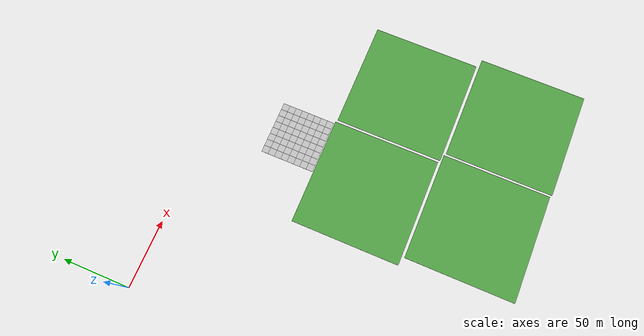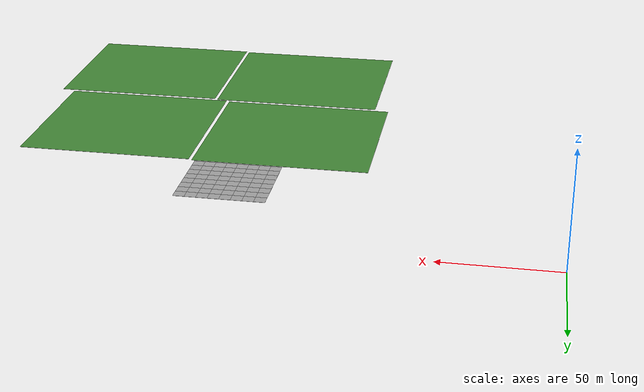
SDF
<sdf version="1.7">
 <world name="default">
  <model name="mud_plane_80x80_5">
   <model name="mud_plane_40x40_0">
    <model name="mud_plane_20x20">
     <model name="mud_plane">
      <static>1</static>
      <link name="link">
       <collision name="collision"><geometry><box><size>10 10 0.1</size></box></geometry></collision>
       <visual name="visual_1">
        <pose>-2.5 2.5 -0.05 0 -0 0</pose>
        <cast_shadows>0</cast_shadows>
        <geometry><box><size>5 5 0.1</size></box></geometry>
        <material>
         <script>
          <uri>model://mud_plane/materials/scripts</uri>
          <uri>model://mud_plane/materials/textures</uri>
          <name>vrc/mud</name>
         </script>
        </material>
       </visual>
       <visual name="visual_2">
        <pose>2.5 2.5 -0.05 0 -0 0</pose>
        <cast_shadows>0</cast_shadows>
        <geometry><box><size>5 5 0.1</size></box></geometry>
        <material>
         <script>
          <uri>model://mud_plane/materials/scripts</uri>
          <uri>model://mud_plane/materials/textures</uri>
          <name>vrc/mud</name>
         </script>
        </material>
       </visual>
       <visual name="visual_3">
        <pose>2.5 -2.5 -0.05 0 -0 0</pose>
        <cast_shadows>0</cast_shadows>
        <geometry><box><size>5 5 0.1</size></box></geometry>
        <material>
         <script>
          <uri>model://mud_plane/materials/scripts</uri>
          <uri>model://mud_plane/materials/textures</uri>
          <name>vrc/mud</name>
         </script>
        </material>
       </visual>
       <visual name="visual_4">
        <pose>-2.5 -2.5 -0.05 0 -0 0</pose>
        <cast_shadows>0</cast_shadows>
        <geometry><box><size>5 5 0.1</size></box></geometry>
        <material>
         <script>
          <uri>model://mud_plane/materials/scripts</uri>
          <uri>model://mud_plane/materials/textures</uri>
          <name>vrc/mud</name>
         </script>
        </material>
       </visual>
      </link>
      <pose>-4.99986 -4.99991 0 0 -0 0</pose>
     </model>
     <model name="mud_plane_0">
      <static>1</static>
      <link name="link">
       <collision name="collision"><geometry><box><size>10 10 0.1</size></box></geometry></collision>
       <visual name="visual_1">
        <pose>-2.5 2.5 -0.05 0 -0 0</pose>
        <cast_shadows>0</cast_shadows>
        <geometry><box><size>5 5 0.1</size></box></geometry>
        <material>
         <script>
          <uri>model://mud_plane/materials/scripts</uri>
          <uri>model://mud_plane/materials/textures</uri>
          <name>vrc/mud</name>
         </script>
        </material>
       </visual>
       <visual name="visual_2">
        <pose>2.5 2.5 -0.05 0 -0 0</pose>
        <cast_shadows>0</cast_shadows>
        <geometry><box><size>5 5 0.1</size></box></geometry>
        <material>
         <script>
          <uri>model://mud_plane/materials/scripts</uri>
          <uri>model://mud_plane/materials/textures</uri>
          <name>vrc/mud</name>
         </script>
        </material>
       </visual>
       <visual name="visual_3">
        <pose>2.5 -2.5 -0.05 0 -0 0</pose>
        <cast_shadows>0</cast_shadows>
        <geometry><box><size>5 5 0.1</size></box></geometry>
        <material>
         <script>
          <uri>model://mud_plane/materials/scripts</uri>
          <uri>model://mud_plane/materials/textures</uri>
          <name>vrc/mud</name>
         </script>
        </material>
       </visual>
       <visual name="visual_4">
        <pose>-2.5 -2.5 -0.05 0 -0 0</pose>
        <cast_shadows>0</cast_shadows>
        <geometry><box><size>5 5 0.1</size></box></geometry>
        <material>
         <script>
          <uri>model://mud_plane/materials/scripts</uri>
          <uri>model://mud_plane/materials/textures</uri>
          <name>vrc/mud</name>
         </script>
        </material>
       </visual>
      </link>
      <pose>-4.99946 4.99954 0 0 -0 0</pose>
     </model>
     <model name="mud_plane_1">
      <static>1</static>
      <link name="link">
       <collision name="collision"><geometry><box><size>10 10 0.1</size></box></geometry></collision>
       <visual name="visual_1">
        <pose>-2.5 2.5 -0.05 0 -0 0</pose>
        <cast_shadows>0</cast_shadows>
        <geometry><box><size>5 5 0.1</size></box></geometry>
        <material>
         <script>
          <uri>model://mud_plane/materials/scripts</uri>
          <uri>model://mud_plane/materials/textures</uri>
          <name>vrc/mud</name>
         </script>
        </material>
       </visual>
       <visual name="visual_2">
        <pose>2.5 2.5 -0.05 0 -0 0</pose>
        <cast_shadows>0</cast_shadows>
        <geometry><box><size>5 5 0.1</size></box></geometry>
        <material>
         <script>
          <uri>model://mud_plane/materials/scripts</uri>
          <uri>model://mud_plane/materials/textures</uri>
          <name>vrc/mud</name>
         </script>
        </material>
       </visual>
       <visual name="visual_3">
        <pose>2.5 -2.5 -0.05 0 -0 0</pose>
        <cast_shadows>0</cast_shadows>
        <geometry><box><size>5 5 0.1</size></box></geometry>
        <material>
         <script>
          <uri>model://mud_plane/materials/scripts</uri>
          <uri>model://mud_plane/materials/textures</uri>
          <name>vrc/mud</name>
         </script>
        </material>
       </visual>
       <visual name="visual_4">
        <pose>-2.5 -2.5 -0.05 0 -0 0</pose>
        <cast_shadows>0</cast_shadows>
        <geometry><box><size>5 5 0.1</size></box></geometry>
        <material>
         <script>
          <uri>model://mud_plane/materials/scripts</uri>
          <uri>model://mud_plane/materials/textures</uri>
          <name>vrc/mud</name>
         </script>
        </material>
       </visual>
      </link>
      <pose>4.99964 -4.99949 0 0 -0 0</pose>
     </model>
     <model name="mud_plane_2">
      <static>1</static>
      <link name="link">
       <collision name="collision"><geometry><box><size>10 10 0.1</size></box></geometry></collision>
       <visual name="visual_1">
        <pose>-2.5 2.5 -0.05 0 -0 0</pose>
        <cast_shadows>0</cast_shadows>
        <geometry><box><size>5 5 0.1</size></box></geometry>
        <material>
         <script>
          <uri>model://mud_plane/materials/scripts</uri>
          <uri>model://mud_plane/materials/textures</uri>
          <name>vrc/mud</name>
         </script>
        </material>
       </visual>
       <visual name="visual_2">
        <pose>2.5 2.5 -0.05 0 -0 0</pose>
        <cast_shadows>0</cast_shadows>
        <geometry><box><size>5 5 0.1</size></box></geometry>
        <material>
         <script>
          <uri>model://mud_plane/materials/scripts</uri>
          <uri>model://mud_plane/materials/textures</uri>
          <name>vrc/mud</name>
         </script>
        </material>
       </visual>
       <visual name="visual_3">
        <pose>2.5 -2.5 -0.05 0 -0 0</pose>
        <cast_shadows>0</cast_shadows>
        <geometry><box><size>5 5 0.1</size></box></geometry>
        <material>
         <script>
          <uri>model://mud_plane/materials/scripts</uri>
          <uri>model://mud_plane/materials/textures</uri>
          <name>vrc/mud</name>
         </script>
        </material>
       </visual>
       <visual name="visual_4">
        <pose>-2.5 -2.5 -0.05 0 -0 0</pose>
        <cast_shadows>0</cast_shadows>
        <geometry><box><size>5 5 0.1</size></box></geometry>
        <material>
         <script>
          <uri>model://mud_plane/materials/scripts</uri>
          <uri>model://mud_plane/materials/textures</uri>
          <name>vrc/mud</name>
         </script>
        </material>
       </visual>
      </link>
      <pose>4.99967 4.99986 0 0 -0 0</pose>
     </model>
     <static>0</static>
     <pose>-9.99895 9.99843 0 0 -0 0</pose>
    </model>
    <model name="mud_plane_20x20_0">
     <model name="mud_plane">
      <static>1</static>
      <link name="link">
       <collision name="collision"><geometry><box><size>10 10 0.1</size></box></geometry></collision>
       <visual name="visual_1">
        <pose>-2.5 2.5 -0.05 0 -0 0</pose>
        <cast_shadows>0</cast_shadows>
        <geometry><box><size>5 5 0.1</size></box></geometry>
        <material>
         <script>
          <uri>model://mud_plane/materials/scripts</uri>
          <uri>model://mud_plane/materials/textures</uri>
          <name>vrc/mud</name>
         </script>
        </material>
       </visual>
       <visual name="visual_2">
        <pose>2.5 2.5 -0.05 0 -0 0</pose>
        <cast_shadows>0</cast_shadows>
        <geometry><box><size>5 5 0.1</size></box></geometry>
        <material>
         <script>
          <uri>model://mud_plane/materials/scripts</uri>
          <uri>model://mud_plane/materials/textures</uri>
          <name>vrc/mud</name>
         </script>
        </material>
       </visual>
       <visual name="visual_3">
        <pose>2.5 -2.5 -0.05 0 -0 0</pose>
        <cast_shadows>0</cast_shadows>
        <geometry><box><size>5 5 0.1</size></box></geometry>
        <material>
         <script>
          <uri>model://mud_plane/materials/scripts</uri>
          <uri>model://mud_plane/materials/textures</uri>
          <name>vrc/mud</name>
         </script>
        </material>
       </visual>
       <visual name="visual_4">
        <pose>-2.5 -2.5 -0.05 0 -0 0</pose>
        <cast_shadows>0</cast_shadows>
        <geometry><box><size>5 5 0.1</size></box></geometry>
        <material>
         <script>
          <uri>model://mud_plane/materials/scripts</uri>
          <uri>model://mud_plane/materials/textures</uri>
          <name>vrc/mud</name>
         </script>
        </material>
       </visual>
      </link>
      <pose>-4.99986 -4.99991 0 0 -0 0</pose>
     </model>
     <model name="mud_plane_0">
      <static>1</static>
      <link name="link">
       <collision name="collision"><geometry><box><size>10 10 0.1</size></box></geometry></collision>
       <visual name="visual_1">
        <pose>-2.5 2.5 -0.05 0 -0 0</pose>
        <cast_shadows>0</cast_shadows>
        <geometry><box><size>5 5 0.1</size></box></geometry>
        <material>
         <script>
          <uri>model://mud_plane/materials/scripts</uri>
          <uri>model://mud_plane/materials/textures</uri>
          <name>vrc/mud</name>
         </script>
        </material>
       </visual>
       <visual name="visual_2">
        <pose>2.5 2.5 -0.05 0 -0 0</pose>
        <cast_shadows>0</cast_shadows>
        <geometry><box><size>5 5 0.1</size></box></geometry>
        <material>
         <script>
          <uri>model://mud_plane/materials/scripts</uri>
          <uri>model://mud_plane/materials/textures</uri>
          <name>vrc/mud</name>
         </script>
        </material>
       </visual>
       <visual name="visual_3">
        <pose>2.5 -2.5 -0.05 0 -0 0</pose>
        <cast_shadows>0</cast_shadows>
        <geometry><box><size>5 5 0.1</size></box></geometry>
        <material>
         <script>
          <uri>model://mud_plane/materials/scripts</uri>
          <uri>model://mud_plane/materials/textures</uri>
          <name>vrc/mud</name>
         </script>
        </material>
       </visual>
       <visual name="visual_4">
        <pose>-2.5 -2.5 -0.05 0 -0 0</pose>
        <cast_shadows>0</cast_shadows>
        <geometry><box><size>5 5 0.1</size></box></geometry>
        <material>
         <script>
          <uri>model://mud_plane/materials/scripts</uri>
          <uri>model://mud_plane/materials/textures</uri>
          <name>vrc/mud</name>
         </script>
        </material>
       </visual>
      </link>
      <pose>-4.99946 4.99954 0 0 -0 0</pose>
     </model>
     <model name="mud_plane_1">
      <static>1</static>
      <link name="link">
       <collision name="collision"><geometry><box><size>10 10 0.1</size></box></geometry></collision>
       <visual name="visual_1">
        <pose>-2.5 2.5 -0.05 0 -0 0</pose>
        <cast_shadows>0</cast_shadows>
        <geometry><box><size>5 5 0.1</size></box></geometry>
        <material>
         <script>
          <uri>model://mud_plane/materials/scripts</uri>
          <uri>model://mud_plane/materials/textures</uri>
          <name>vrc/mud</name>
         </script>
        </material>
       </visual>
       <visual name="visual_2">
        <pose>2.5 2.5 -0.05 0 -0 0</pose>
        <cast_shadows>0</cast_shadows>
        <geometry><box><size>5 5 0.1</size></box></geometry>
        <material>
         <script>
          <uri>model://mud_plane/materials/scripts</uri>
          <uri>model://mud_plane/materials/textures</uri>
          <name>vrc/mud</name>
         </script>
        </material>
       </visual>
       <visual name="visual_3">
        <pose>2.5 -2.5 -0.05 0 -0 0</pose>
        <cast_shadows>0</cast_shadows>
        <geometry><box><size>5 5 0.1</size></box></geometry>
        <material>
         <script>
          <uri>model://mud_plane/materials/scripts</uri>
          <uri>model://mud_plane/materials/textures</uri>
          <name>vrc/mud</name>
         </script>
        </material>
       </visual>
       <visual name="visual_4">
        <pose>-2.5 -2.5 -0.05 0 -0 0</pose>
        <cast_shadows>0</cast_shadows>
        <geometry><box><size>5 5 0.1</size></box></geometry>
        <material>
         <script>
          <uri>model://mud_plane/materials/scripts</uri>
          <uri>model://mud_plane/materials/textures</uri>
          <name>vrc/mud</name>
         </script>
        </material>
       </visual>
      </link>
      <pose>4.99964 -4.99949 0 0 -0 0</pose>
     </model>
     <model name="mud_plane_2">
      <static>1</static>
      <link name="link">
       <collision name="collision"><geometry><box><size>10 10 0.1</size></box></geometry></collision>
       <visual name="visual_1">
        <pose>-2.5 2.5 -0.05 0 -0 0</pose>
        <cast_shadows>0</cast_shadows>
        <geometry><box><size>5 5 0.1</size></box></geometry>
        <material>
         <script>
          <uri>model://mud_plane/materials/scripts</uri>
          <uri>model://mud_plane/materials/textures</uri>
          <name>vrc/mud</name>
         </script>
        </material>
       </visual>
       <visual name="visual_2">
        <pose>2.5 2.5 -0.05 0 -0 0</pose>
        <cast_shadows>0</cast_shadows>
        <geometry><box><size>5 5 0.1</size></box></geometry>
        <material>
         <script>
          <uri>model://mud_plane/materials/scripts</uri>
          <uri>model://mud_plane/materials/textures</uri>
          <name>vrc/mud</name>
         </script>
        </material>
       </visual>
       <visual name="visual_3">
        <pose>2.5 -2.5 -0.05 0 -0 0</pose>
        <cast_shadows>0</cast_shadows>
        <geometry><box><size>5 5 0.1</size></box></geometry>
        <material>
         <script>
          <uri>model://mud_plane/materials/scripts</uri>
          <uri>model://mud_plane/materials/textures</uri>
          <name>vrc/mud</name>
         </script>
        </material>
       </visual>
       <visual name="visual_4">
        <pose>-2.5 -2.5 -0.05 0 -0 0</pose>
        <cast_shadows>0</cast_shadows>
        <geometry><box><size>5 5 0.1</size></box></geometry>
        <material>
         <script>
          <uri>model://mud_plane/materials/scripts</uri>
          <uri>model://mud_plane/materials/textures</uri>
          <name>vrc/mud</name>
         </script>
        </material>
       </visual>
      </link>
      <pose>4.99967 4.99986 0 0 -0 0</pose>
     </model>
     <static>0</static>
     <pose>9.99933 9.9997 0 0 -0 0</pose>
    </model>
    <model name="mud_plane_20x20_1">
     <model name="mud_plane">
      <static>1</static>
      <link name="link">
       <collision name="collision"><geometry><box><size>10 10 0.1</size></box></geometry></collision>
       <visual name="visual_1">
        <pose>-2.5 2.5 -0.05 0 -0 0</pose>
        <cast_shadows>0</cast_shadows>
        <geometry><box><size>5 5 0.1</size></box></geometry>
        <material>
         <script>
          <uri>model://mud_plane/materials/scripts</uri>
          <uri>model://mud_plane/materials/textures</uri>
          <name>vrc/mud</name>
         </script>
        </material>
       </visual>
       <visual name="visual_2">
        <pose>2.5 2.5 -0.05 0 -0 0</pose>
        <cast_shadows>0</cast_shadows>
        <geometry><box><size>5 5 0.1</size></box></geometry>
        <material>
         <script>
          <uri>model://mud_plane/materials/scripts</uri>
          <uri>model://mud_plane/materials/textures</uri>
          <name>vrc/mud</name>
         </script>
        </material>
       </visual>
       <visual name="visual_3">
        <pose>2.5 -2.5 -0.05 0 -0 0</pose>
        <cast_shadows>0</cast_shadows>
        <geometry><box><size>5 5 0.1</size></box></geometry>
        <material>
         <script>
          <uri>model://mud_plane/materials/scripts</uri>
          <uri>model://mud_plane/materials/textures</uri>
          <name>vrc/mud</name>
         </script>
        </material>
       </visual>
       <visual name="visual_4">
        <pose>-2.5 -2.5 -0.05 0 -0 0</pose>
        <cast_shadows>0</cast_shadows>
        <geometry><box><size>5 5 0.1</size></box></geometry>
        <material>
         <script>
          <uri>model://mud_plane/materials/scripts</uri>
          <uri>model://mud_plane/materials/textures</uri>
          <name>vrc/mud</name>
         </script>
        </material>
       </visual>
      </link>
      <pose>-4.99986 -4.99991 0 0 -0 0</pose>
     </model>
     <model name="mud_plane_0">
      <static>1</static>
      <link name="link">
       <collision name="collision"><geometry><box><size>10 10 0.1</size></box></geometry></collision>
       <visual name="visual_1">
        <pose>-2.5 2.5 -0.05 0 -0 0</pose>
        <cast_shadows>0</cast_shadows>
        <geometry><box><size>5 5 0.1</size></box></geometry>
        <material>
         <script>
          <uri>model://mud_plane/materials/scripts</uri>
          <uri>model://mud_plane/materials/textures</uri>
          <name>vrc/mud</name>
         </script>
        </material>
       </visual>
       <visual name="visual_2">
        <pose>2.5 2.5 -0.05 0 -0 0</pose>
        <cast_shadows>0</cast_shadows>
        <geometry><box><size>5 5 0.1</size></box></geometry>
        <material>
         <script>
          <uri>model://mud_plane/materials/scripts</uri>
          <uri>model://mud_plane/materials/textures</uri>
          <name>vrc/mud</name>
         </script>
        </material>
       </visual>
       <visual name="visual_3">
        <pose>2.5 -2.5 -0.05 0 -0 0</pose>
        <cast_shadows>0</cast_shadows>
        <geometry><box><size>5 5 0.1</size></box></geometry>
        <material>
         <script>
          <uri>model://mud_plane/materials/scripts</uri>
          <uri>model://mud_plane/materials/textures</uri>
          <name>vrc/mud</name>
         </script>
        </material>
       </visual>
       <visual name="visual_4">
        <pose>-2.5 -2.5 -0.05 0 -0 0</pose>
        <cast_shadows>0</cast_shadows>
        <geometry><box><size>5 5 0.1</size></box></geometry>
        <material>
         <script>
          <uri>model://mud_plane/materials/scripts</uri>
          <uri>model://mud_plane/materials/textures</uri>
          <name>vrc/mud</name>
         </script>
        </material>
       </visual>
      </link>
      <pose>-4.99946 4.99954 0 0 -0 0</pose>
     </model>
     <model name="mud_plane_1">
      <static>1</static>
      <link name="link">
       <collision name="collision"><geometry><box><size>10 10 0.1</size></box></geometry></collision>
       <visual name="visual_1">
        <pose>-2.5 2.5 -0.05 0 -0 0</pose>
        <cast_shadows>0</cast_shadows>
        <geometry><box><size>5 5 0.1</size></box></geometry>
        <material>
         <script>
          <uri>model://mud_plane/materials/scripts</uri>
          <uri>model://mud_plane/materials/textures</uri>
          <name>vrc/mud</name>
         </script>
        </material>
       </visual>
       <visual name="visual_2">
        <pose>2.5 2.5 -0.05 0 -0 0</pose>
        <cast_shadows>0</cast_shadows>
        <geometry><box><size>5 5 0.1</size></box></geometry>
        <material>
         <script>
          <uri>model://mud_plane/materials/scripts</uri>
          <uri>model://mud_plane/materials/textures</uri>
          <name>vrc/mud</name>
         </script>
        </material>
       </visual>
       <visual name="visual_3">
        <pose>2.5 -2.5 -0.05 0 -0 0</pose>
        <cast_shadows>0</cast_shadows>
        <geometry><box><size>5 5 0.1</size></box></geometry>
        <material>
         <script>
          <uri>model://mud_plane/materials/scripts</uri>
          <uri>model://mud_plane/materials/textures</uri>
          <name>vrc/mud</name>
         </script>
        </material>
       </visual>
       <visual name="visual_4">
        <pose>-2.5 -2.5 -0.05 0 -0 0</pose>
        <cast_shadows>0</cast_shadows>
        <geometry><box><size>5 5 0.1</size></box></geometry>
        <material>
         <script>
          <uri>model://mud_plane/materials/scripts</uri>
          <uri>model://mud_plane/materials/textures</uri>
          <name>vrc/mud</name>
         </script>
        </material>
       </visual>
      </link>
      <pose>4.99964 -4.99949 0 0 -0 0</pose>
     </model>
     <model name="mud_plane_2">
      <static>1</static>
      <link name="link">
       <collision name="collision"><geometry><box><size>10 10 0.1</size></box></geometry></collision>
       <visual name="visual_1">
        <pose>-2.5 2.5 -0.05 0 -0 0</pose>
        <cast_shadows>0</cast_shadows>
        <geometry><box><size>5 5 0.1</size></box></geometry>
        <material>
         <script>
          <uri>model://mud_plane/materials/scripts</uri>
          <uri>model://mud_plane/materials/textures</uri>
          <name>vrc/mud</name>
         </script>
        </material>
       </visual>
       <visual name="visual_2">
        <pose>2.5 2.5 -0.05 0 -0 0</pose>
        <cast_shadows>0</cast_shadows>
        <geometry><box><size>5 5 0.1</size></box></geometry>
        <material>
         <script>
          <uri>model://mud_plane/materials/scripts</uri>
          <uri>model://mud_plane/materials/textures</uri>
          <name>vrc/mud</name>
         </script>
        </material>
       </visual>
       <visual name="visual_3">
        <pose>2.5 -2.5 -0.05 0 -0 0</pose>
        <cast_shadows>0</cast_shadows>
        <geometry><box><size>5 5 0.1</size></box></geometry>
        <material>
         <script>
          <uri>model://mud_plane/materials/scripts</uri>
          <uri>model://mud_plane/materials/textures</uri>
          <name>vrc/mud</name>
         </script>
        </material>
       </visual>
       <visual name="visual_4">
        <pose>-2.5 -2.5 -0.05 0 -0 0</pose>
        <cast_shadows>0</cast_shadows>
        <geometry><box><size>5 5 0.1</size></box></geometry>
        <material>
         <script>
          <uri>model://mud_plane/materials/scripts</uri>
          <uri>model://mud_plane/materials/textures</uri>
          <name>vrc/mud</name>
         </script>
        </material>
       </visual>
      </link>
      <pose>4.99967 4.99986 0 0 -0 0</pose>
     </model>
     <static>0</static>
     <pose>9.9993 -9.99877 0 0 -0 0</pose>
    </model>
    <model name="mud_plane_20x20_2">
     <model name="mud_plane">
      <static>1</static>
      <link name="link">
       <collision name="collision"><geometry><box><size>10 10 0.1</size></box></geometry></collision>
       <visual name="visual_1">
        <pose>-2.5 2.5 -0.05 0 -0 0</pose>
        <cast_shadows>0</cast_shadows>
        <geometry><box><size>5 5 0.1</size></box></geometry>
        <material>
         <script>
          <uri>model://mud_plane/materials/scripts</uri>
          <uri>model://mud_plane/materials/textures</uri>
          <name>vrc/mud</name>
         </script>
        </material>
       </visual>
       <visual name="visual_2">
        <pose>2.5 2.5 -0.05 0 -0 0</pose>
        <cast_shadows>0</cast_shadows>
        <geometry><box><size>5 5 0.1</size></box></geometry>
        <material>
         <script>
          <uri>model://mud_plane/materials/scripts</uri>
          <uri>model://mud_plane/materials/textures</uri>
          <name>vrc/mud</name>
         </script>
        </material>
       </visual>
       <visual name="visual_3">
        <pose>2.5 -2.5 -0.05 0 -0 0</pose>
        <cast_shadows>0</cast_shadows>
        <geometry><box><size>5 5 0.1</size></box></geometry>
        <material>
         <script>
          <uri>model://mud_plane/materials/scripts</uri>
          <uri>model://mud_plane/materials/textures</uri>
          <name>vrc/mud</name>
         </script>
        </material>
       </visual>
       <visual name="visual_4">
        <pose>-2.5 -2.5 -0.05 0 -0 0</pose>
        <cast_shadows>0</cast_shadows>
        <geometry><box><size>5 5 0.1</size></box></geometry>
        <material>
         <script>
          <uri>model://mud_plane/materials/scripts</uri>
          <uri>model://mud_plane/materials/textures</uri>
          <name>vrc/mud</name>
         </script>
        </material>
       </visual>
      </link>
      <pose>-4.99986 -4.99991 0 0 -0 0</pose>
     </model>
     <model name="mud_plane_0">
      <static>1</static>
      <link name="link">
       <collision name="collision"><geometry><box><size>10 10 0.1</size></box></geometry></collision>
       <visual name="visual_1">
        <pose>-2.5 2.5 -0.05 0 -0 0</pose>
        <cast_shadows>0</cast_shadows>
        <geometry><box><size>5 5 0.1</size></box></geometry>
        <material>
         <script>
          <uri>model://mud_plane/materials/scripts</uri>
          <uri>model://mud_plane/materials/textures</uri>
          <name>vrc/mud</name>
         </script>
        </material>
       </visual>
       <visual name="visual_2">
        <pose>2.5 2.5 -0.05 0 -0 0</pose>
        <cast_shadows>0</cast_shadows>
        <geometry><box><size>5 5 0.1</size></box></geometry>
        <material>
         <script>
          <uri>model://mud_plane/materials/scripts</uri>
          <uri>model://mud_plane/materials/textures</uri>
          <name>vrc/mud</name>
         </script>
        </material>
       </visual>
       <visual name="visual_3">
        <pose>2.5 -2.5 -0.05 0 -0 0</pose>
        <cast_shadows>0</cast_shadows>
        <geometry><box><size>5 5 0.1</size></box></geometry>
        <material>
         <script>
          <uri>model://mud_plane/materials/scripts</uri>
          <uri>model://mud_plane/materials/textures</uri>
          <name>vrc/mud</name>
         </script>
        </material>
       </visual>
       <visual name="visual_4">
        <pose>-2.5 -2.5 -0.05 0 -0 0</pose>
        <cast_shadows>0</cast_shadows>
        <geometry><box><size>5 5 0.1</size></box></geometry>
        <material>
         <script>
          <uri>model://mud_plane/materials/scripts</uri>
          <uri>model://mud_plane/materials/textures</uri>
          <name>vrc/mud</name>
         </script>
        </material>
       </visual>
      </link>
      <pose>-4.99946 4.99954 0 0 -0 0</pose>
     </model>
     <model name="mud_plane_1">
      <static>1</static>
      <link name="link">
       <collision name="collision"><geometry><box><size>10 10 0.1</size></box></geometry></collision>
       <visual name="visual_1">
        <pose>-2.5 2.5 -0.05 0 -0 0</pose>
        <cast_shadows>0</cast_shadows>
        <geometry><box><size>5 5 0.1</size></box></geometry>
        <material>
         <script>
          <uri>model://mud_plane/materials/scripts</uri>
          <uri>model://mud_plane/materials/textures</uri>
          <name>vrc/mud</name>
         </script>
        </material>
       </visual>
       <visual name="visual_2">
        <pose>2.5 2.5 -0.05 0 -0 0</pose>
        <cast_shadows>0</cast_shadows>
        <geometry><box><size>5 5 0.1</size></box></geometry>
        <material>
         <script>
          <uri>model://mud_plane/materials/scripts</uri>
          <uri>model://mud_plane/materials/textures</uri>
          <name>vrc/mud</name>
         </script>
        </material>
       </visual>
       <visual name="visual_3">
        <pose>2.5 -2.5 -0.05 0 -0 0</pose>
        <cast_shadows>0</cast_shadows>
        <geometry><box><size>5 5 0.1</size></box></geometry>
        <material>
         <script>
          <uri>model://mud_plane/materials/scripts</uri>
          <uri>model://mud_plane/materials/textures</uri>
          <name>vrc/mud</name>
         </script>
        </material>
       </visual>
       <visual name="visual_4">
        <pose>-2.5 -2.5 -0.05 0 -0 0</pose>
        <cast_shadows>0</cast_shadows>
        <geometry><box><size>5 5 0.1</size></box></geometry>
        <material>
         <script>
          <uri>model://mud_plane/materials/scripts</uri>
          <uri>model://mud_plane/materials/textures</uri>
          <name>vrc/mud</name>
         </script>
        </material>
       </visual>
      </link>
      <pose>4.99964 -4.99949 0 0 -0 0</pose>
     </model>
     <model name="mud_plane_2">
      <static>1</static>
      <link name="link">
       <collision name="collision"><geometry><box><size>10 10 0.1</size></box></geometry></collision>
       <visual name="visual_1">
        <pose>-2.5 2.5 -0.05 0 -0 0</pose>
        <cast_shadows>0</cast_shadows>
        <geometry><box><size>5 5 0.1</size></box></geometry>
        <material>
         <script>
          <uri>model://mud_plane/materials/scripts</uri>
          <uri>model://mud_plane/materials/textures</uri>
          <name>vrc/mud</name>
         </script>
        </material>
       </visual>
       <visual name="visual_2">
        <pose>2.5 2.5 -0.05 0 -0 0</pose>
        <cast_shadows>0</cast_shadows>
        <geometry><box><size>5 5 0.1</size></box></geometry>
        <material>
         <script>
          <uri>model://mud_plane/materials/scripts</uri>
          <uri>model://mud_plane/materials/textures</uri>
          <name>vrc/mud</name>
         </script>
        </material>
       </visual>
       <visual name="visual_3">
        <pose>2.5 -2.5 -0.05 0 -0 0</pose>
        <cast_shadows>0</cast_shadows>
        <geometry><box><size>5 5 0.1</size></box></geometry>
        <material>
         <script>
          <uri>model://mud_plane/materials/scripts</uri>
          <uri>model://mud_plane/materials/textures</uri>
          <name>vrc/mud</name>
         </script>
        </material>
       </visual>
       <visual name="visual_4">
        <pose>-2.5 -2.5 -0.05 0 -0 0</pose>
        <cast_shadows>0</cast_shadows>
        <geometry><box><size>5 5 0.1</size></box></geometry>
        <material>
         <script>
          <uri>model://mud_plane/materials/scripts</uri>
          <uri>model://mud_plane/materials/textures</uri>
          <name>vrc/mud</name>
         </script>
        </material>
       </visual>
      </link>
      <pose>4.99967 4.99986 0 0 -0 0</pose>
     </model>
     <static>0</static>
     <pose>-9.99969 -9.99935 0 0 -0 0</pose>
    </model>
    <static>0</static>
    <pose>19.9985 -19.998 0 0 -0 0</pose>
   </model>
   <static>0</static>
   <pose>123.857 -42.9997 0 0 -0 0</pose>
  </model>
  <model name="grass_plane_80x80_0">
   <pose>125.478 -123.701 -0.05 0 -0 0</pose>
   <static>1</static>
   <link name="link">
    <collision name="collision"><geometry><box><size>80 80 0.1</size></box></geometry></collision>
    <visual name="grass">
     <cast_shadows>0</cast_shadows>
     <geometry><box><size>80 80 0.1</size></box></geometry>
     <material>
      <script><uri>file://media/materials/scripts/gazebo.material</uri><name>Gazebo/Grass</name></script>
     </material>
    </visual>
   </link>
  </model>
  <model name="grass_plane_80x80_2">
   <pose>207.12 -124.743 -0.05 0 -0 0</pose>
   <static>1</static>
   <link name="link">
    <collision name="collision"><geometry><box><size>80 80 0.1</size></box></geometry></collision>
    <visual name="grass">
     <cast_shadows>0</cast_shadows>
     <geometry><box><size>80 80 0.1</size></box></geometry>
     <material>
      <script><uri>file://media/materials/scripts/gazebo.material</uri><name>Gazebo/Grass</name></script>
     </material>
    </visual>
   </link>
  </model>
  <model name="grass_plane_80x80_14">
   <pose>132.085 -205.867 -0.05 0 -0 0</pose>
   <static>1</static>
   <link name="link">
    <collision name="collision"><geometry><box><size>80 80 0.1</size></box></geometry></collision>
    <visual name="grass">
     <cast_shadows>0</cast_shadows>
     <geometry><box><size>80 80 0.1</size></box></geometry>
     <material>
      <script><uri>file://media/materials/scripts/gazebo.material</uri><name>Gazebo/Grass</name></script>
     </material>
    </visual>
   </link>
  </model>
  <model name="grass_plane_80x80_15">
   <pose>213.642 -206.983 -0.05 0 -0 0</pose>
   <static>1</static>
   <link name="link">
    <collision name="collision"><geometry><box><size>80 80 0.1</size></box></geometry></collision>
    <visual name="grass">
     <cast_shadows>0</cast_shadows>
     <geometry><box><size>80 80 0.1</size></box></geometry>
     <material>
      <script><uri>file://media/materials/scripts/gazebo.material</uri><name>Gazebo/Grass</name></script>
     </material>
    </visual>
   </link>
  </model>
 </world>
</sdf>
